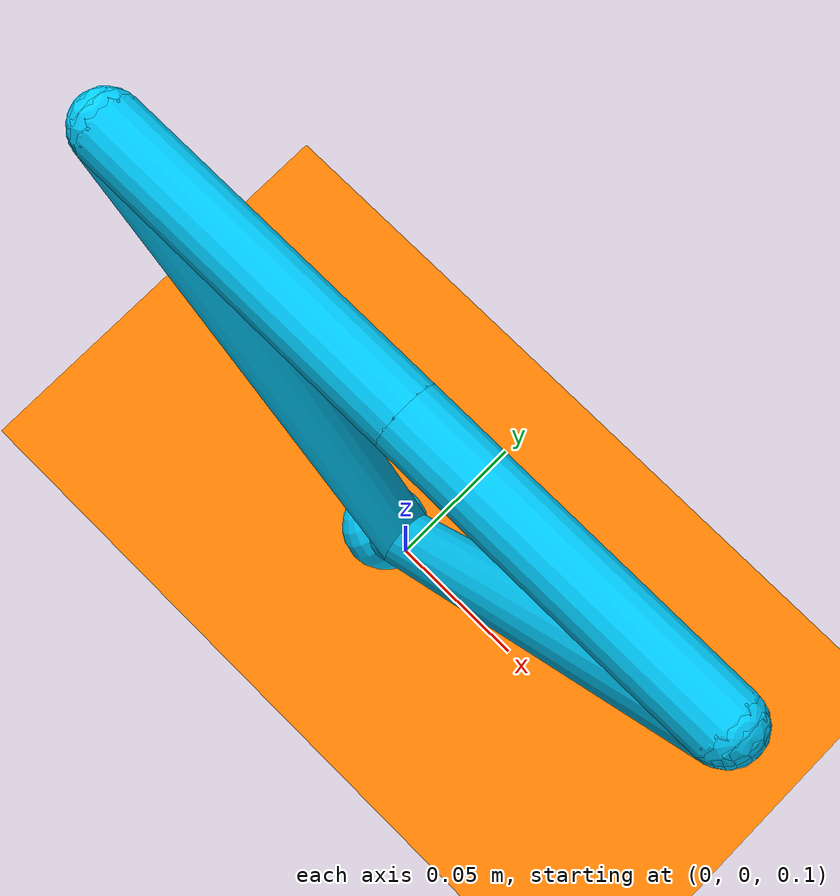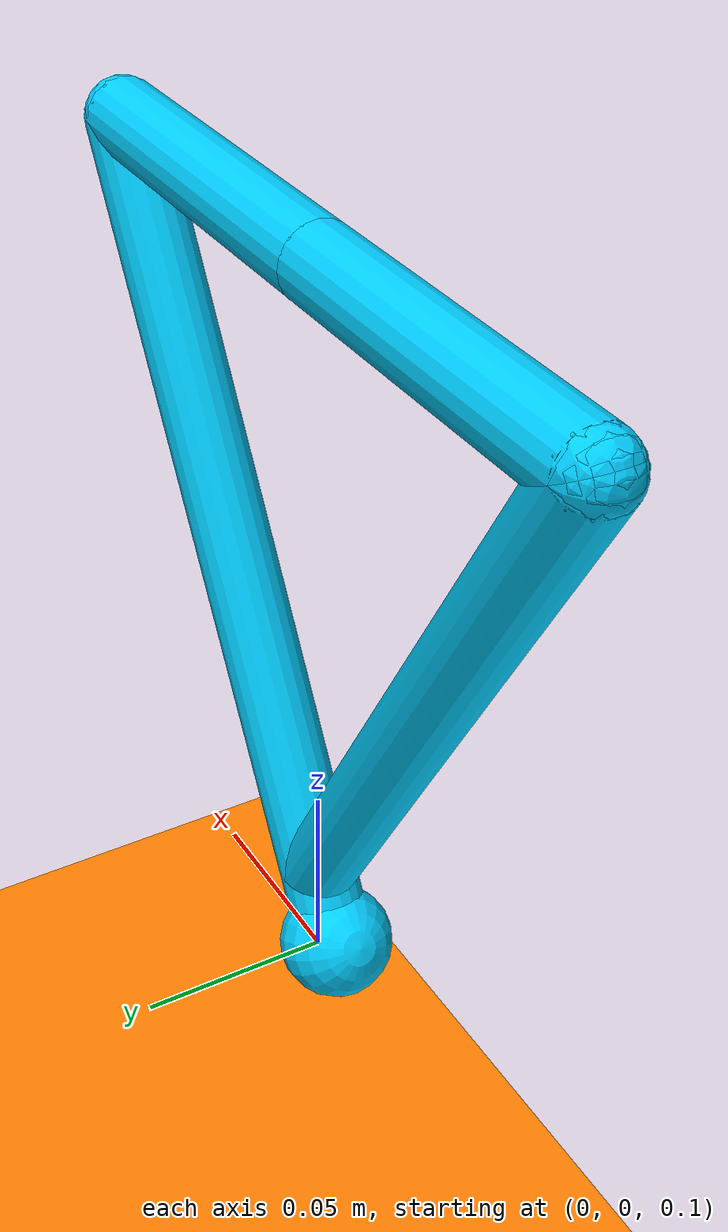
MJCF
<!-- Note: Component inertias are known to be incorrect in this version -->
<mujoco model='Minitaur'>
  <compiler inertiafromgeom='false' angle='degree' eulerseq='zyx'/>
  <size nuser_actuator='1' nuser_sensor='1'/>
  <option timestep='0.0005' iterations='50' solver='PGS' gravity='0 0 -0.9806'/>
  <!-- Timestep is set to 0.0005 because our controller runs at 2 kHz (-9.806) -->
  <!-- Larger values still have stable dynamics -->

  <visual>
    <quality shadowsize='4096'/>
    <map znear='0.05'/>
  </visual>

  <default>
    <joint limited='true'/>
    <geom contype='0' conaffinity='0' condim='1' solref=".005 1" solimp=".8 .8 .01" material='cassie'/>
    <motor ctrllimited='true'/>
    <mesh scale='0.01 0.01 0.01'/>
  </default>

  <asset>
    <texture type='skybox' builtin='gradient' width='128' height='128' rgb1='0.725490196078431   0.403921568627451   1.000000000000000' rgb2='1.000000000000000   0.984313725490196   0.588235294117647'/>
    <texture name='plane' type='2d' builtin='checker'  rgb1='1 0 0' rgb2='1 1 0' width='128' height='128'/>
    <material name='plane' reflectance='0.0' texture='plane' texrepeat='4 4' texuniform='true'/>
    <material name='cassie' rgba='0.003921568627451   0.803921568627451   0.996078431372549 1'/>
    <mesh name='thigh' file='minitaurlegthigh.STL'/>-->
    <mesh name='foot' file='minitaurlegfoot.STL'/>
    <mesh name='calf1' file='minitaurlegcalf.STL'/>
    <mesh name='calf2' file='minitaurlegcalfankle.STL'/>
  </asset>

  <worldbody>
    <geom type='plane' size='1 1 1' material='plane' contype='1' conaffinity='1'/>

    <body name='thigh1' euler='0 0 0' pos='0 0 0.3'>
      <inertial pos='0.03848 0 0.00397' mass='0.03921' fullinertia='0.00000539488 0.00005606744 0.00006107051 0 0.00000009813 0'/>
      <geom type='capsule' fromto='0 0 0 0.1 0 0' size='0.01'/>
      <joint type='slide' limited='false' pos='0 0 0' axis='0 0 1'/>
      <joint name='thigh1_j' type='hinge' pos='0 0 0' axis='0 1 0' range='-45 45'/>

      <body name='calf_long' pos='0.1 0 0' euler='0 -60 0'>
        <inertial pos='-0.11635 0 0.00463' mass='0.05488' fullinertia='0.00000220501 0.00027791876 0.00027939897 0 0 0'/>
        <geom type='capsule' fromto='0 0 0 -0.22 0 0' size='0.01'/>
        <joint type='hinge' pos='0 0 0' axis='0 1 0' range='-45 45'/>

        <body name='foot' pos='-0.22 0 0'>
          <inertial pos='0 0 0' mass='0'/>
          <geom type='sphere' size='0.015' contype='1' conaffinity='1'/>
        </body>

      </body>

      <body name='thigh2' euler='0 0 0' pos='0 0 0'>
        <inertial pos='-0.03848 0 0.00397' mass='0.03921' fullinertia='0.00000539488 0.00005606744 0.00006107051 0 0.00000009813 0'/>
        <geom type='capsule' fromto='0 0 0 -0.1 0 0' size='0.01'/>
        <joint name='thigh2_j' type='hinge' pos='0 0 0' axis='0 1 0' range='-45 45'/>

        <body name='calf_short' euler='0 60 0' pos='-0.1 0 0'>
          <inertial pos='0.10296 0 0.00448' mass='0.04710' fullinertia='0.00000203538 0.00019397672 0.00019542559 0 -0.00000006948 0'/>
          <geom type='capsule' fromto='0 0 0 0.2 0 0' size='0.01'/>
          <joint type='hinge' pos='0 0 0' axis='0 1 0' range='-45 45'/>
        </body>

      </body>

    </body>

  </worldbody>

  <equality>
    <connect body1='calf_short' body2='calf_long' anchor='0.2 0 0'/>
  </equality>

  <actuator>
    <!-- I don't know the actual numbers for these -->
    <motor name='thigh1_a' joint='thigh1_j' gear='1' ctrllimited='true' ctrlrange='-1 1'/>
    <motor name='thigh2_a' joint='thigh2_j' gear='1' ctrllimited='true' ctrlrange='-1 1'/>
  </actuator>

</mujoco>
